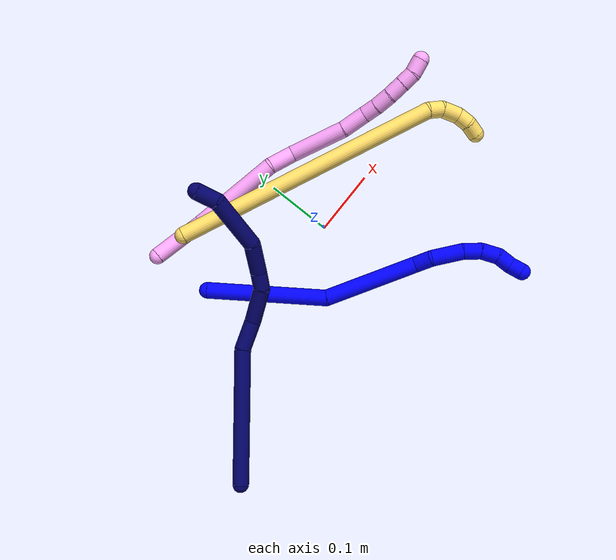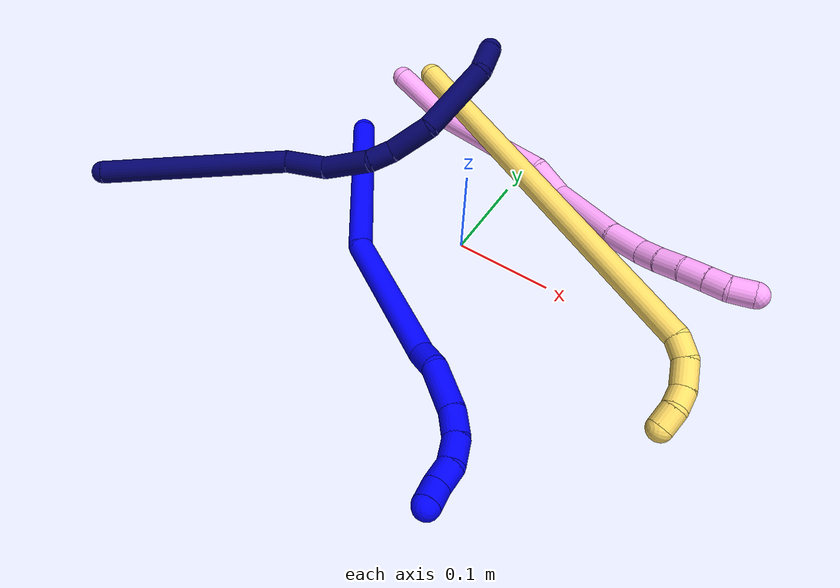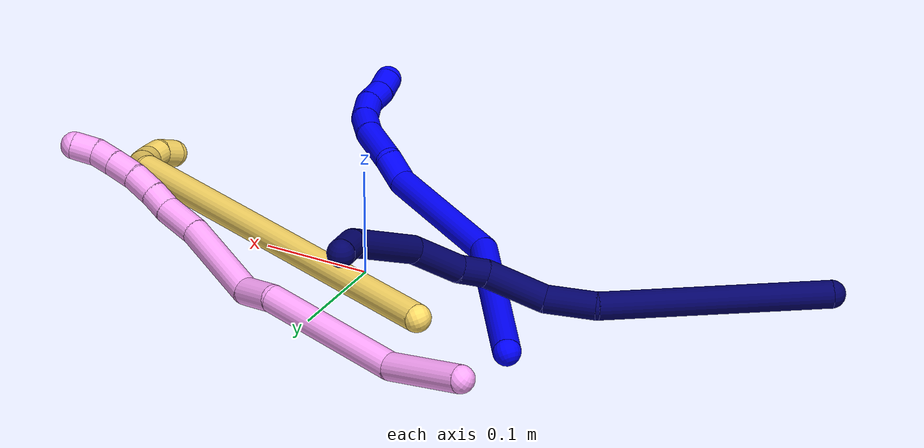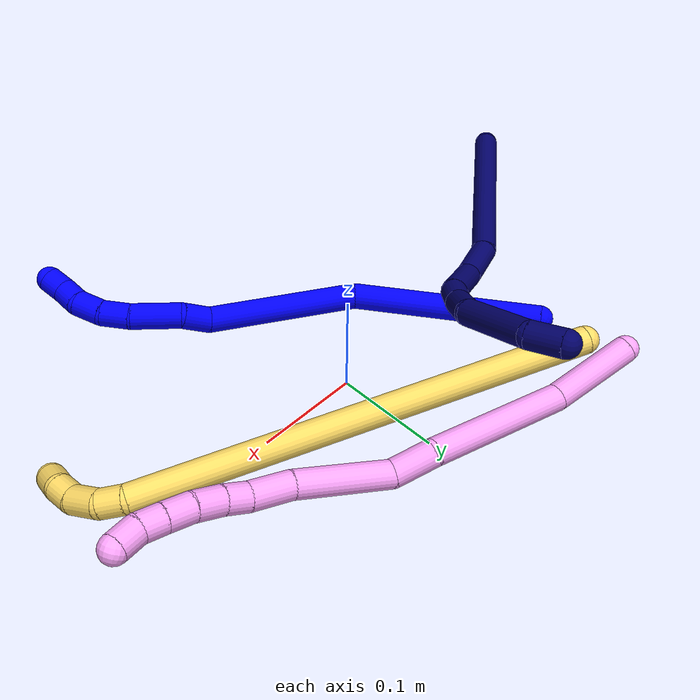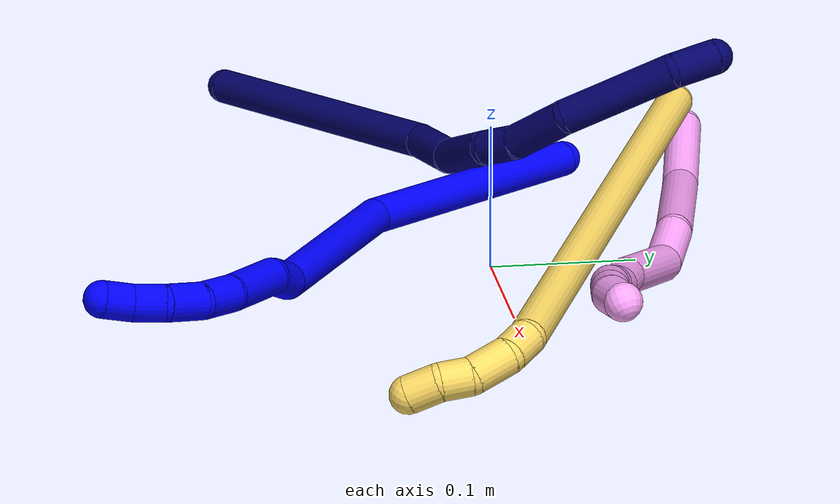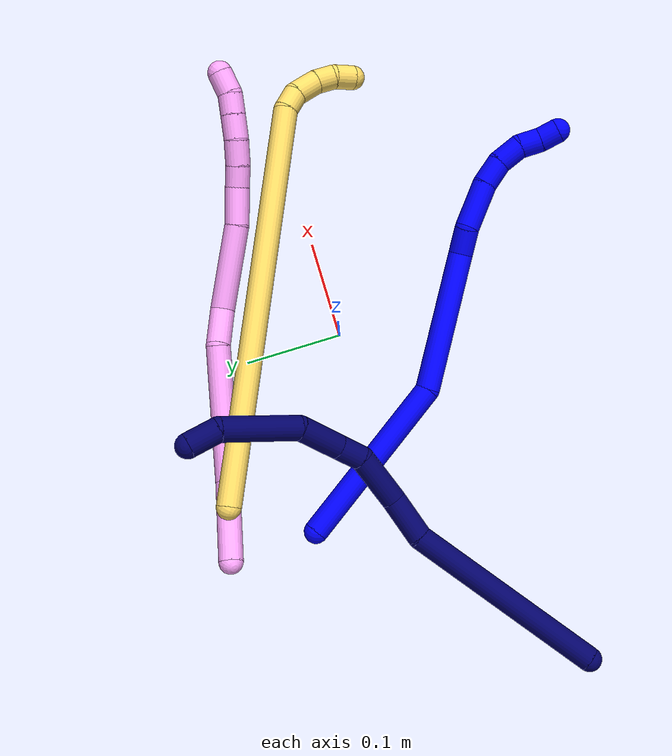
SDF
<sdf version="1.7">
 <world name="default">
  <model name="1">
   <static>0</static>
   <link name="1">
    <collision name="collision-cylinder-e_1_1_4">
     <pose>0.039187 -0.059771 0.056711 0.811661 0.443946 0.193348</pose>
     <geometry><cylinder><radius>0.0125</radius><length>0.182475</length></cylinder></geometry>
     <surface>
      <friction><ode><mu>1.16</mu><mu2>1.16</mu2><slip1>0</slip1><slip2>0</slip2></ode></friction>
      <contact><ode><kp>1e+06</kp><kd>1</kd><max_vel>0</max_vel><min_depth>0.001</min_depth></ode></contact>
     </surface>
    </collision>
    <visual name="visual-cylinder-e_1_1_4">
     <pose>0.039187 -0.059771 0.056711 0.811661 0.443946 0.193348</pose>
     <geometry><cylinder><radius>0.0125</radius><length>0.182475</length></cylinder></geometry>
     <material><ambient>0 0 1 1</ambient></material>
    </visual>
    <collision name="collision-cylinder-e_2_4_5">
     <pose>0.127012 -0.142189 0.162715 0.430673 0.730932 0.167006</pose>
     <geometry><cylinder><radius>0.0125</radius><length>0.145716</length></cylinder></geometry>
     <surface>
      <friction><ode><mu>1.16</mu><mu2>1.16</mu2><slip1>0</slip1><slip2>0</slip2></ode></friction>
      <contact><ode><kp>1e+06</kp><kd>1</kd><max_vel>0</max_vel><min_depth>0.001</min_depth></ode></contact>
     </surface>
    </collision>
    <visual name="visual-cylinder-e_2_4_5">
     <pose>0.127012 -0.142189 0.162715 0.430673 0.730932 0.167006</pose>
     <geometry><cylinder><radius>0.0125</radius><length>0.145716</length></cylinder></geometry>
     <material><ambient>0 0 1 1</ambient></material>
    </visual>
    <collision name="collision-cylinder-e_3_5_6">
     <pose>0.180718 -0.166792 0.22497 0.149816 0.368931 0.028004</pose>
     <geometry><cylinder><radius>0.0125</radius><length>0.028108</length></cylinder></geometry>
     <surface>
      <friction><ode><mu>1.16</mu><mu2>1.16</mu2><slip1>0</slip1><slip2>0</slip2></ode></friction>
      <contact><ode><kp>1e+06</kp><kd>1</kd><max_vel>0</max_vel><min_depth>0.001</min_depth></ode></contact>
     </surface>
    </collision>
    <visual name="visual-cylinder-e_3_5_6">
     <pose>0.180718 -0.166792 0.22497 0.149816 0.368931 0.028004</pose>
     <geometry><cylinder><radius>0.0125</radius><length>0.028108</length></cylinder></geometry>
     <material><ambient>0 0 1 1</ambient></material>
    </visual>
    <collision name="collision-cylinder-e_4_6_7">
     <pose>0.199293 -0.178709 0.255341 0.519669 0.592683 0.161987</pose>
     <geometry><cylinder><radius>0.0125</radius><length>0.048363</length></cylinder></geometry>
     <surface>
      <friction><ode><mu>1.16</mu><mu2>1.16</mu2><slip1>0</slip1><slip2>0</slip2></ode></friction>
      <contact><ode><kp>1e+06</kp><kd>1</kd><max_vel>0</max_vel><min_depth>0.001</min_depth></ode></contact>
     </surface>
    </collision>
    <visual name="visual-cylinder-e_4_6_7">
     <pose>0.199293 -0.178709 0.255341 0.519669 0.592683 0.161987</pose>
     <geometry><cylinder><radius>0.0125</radius><length>0.048363</length></cylinder></geometry>
     <material><ambient>0 0 1 1</ambient></material>
    </visual>
    <collision name="collision-cylinder-e_5_7_8">
     <pose>0.218676 -0.196447 0.282077 0.695082 0.450585 0.165661</pose>
     <geometry><cylinder><radius>0.0125</radius><length>0.026983</length></cylinder></geometry>
     <surface>
      <friction><ode><mu>1.16</mu><mu2>1.16</mu2><slip1>0</slip1><slip2>0</slip2></ode></friction>
      <contact><ode><kp>1e+06</kp><kd>1</kd><max_vel>0</max_vel><min_depth>0.001</min_depth></ode></contact>
     </surface>
    </collision>
    <visual name="visual-cylinder-e_5_7_8">
     <pose>0.218676 -0.196447 0.282077 0.695082 0.450585 0.165661</pose>
     <geometry><cylinder><radius>0.0125</radius><length>0.026983</length></cylinder></geometry>
     <material><ambient>0 0 1 1</ambient></material>
    </visual>
    <collision name="collision-cylinder-e_6_8_9">
     <pose>0.226963 -0.214165 0.299725 0.87385 0.183948 0.086099</pose>
     <geometry><cylinder><radius>0.0125</radius><length>0.026369</length></cylinder></geometry>
     <surface>
      <friction><ode><mu>1.16</mu><mu2>1.16</mu2><slip1>0</slip1><slip2>0</slip2></ode></friction>
      <contact><ode><kp>1e+06</kp><kd>1</kd><max_vel>0</max_vel><min_depth>0.001</min_depth></ode></contact>
     </surface>
    </collision>
    <visual name="visual-cylinder-e_6_8_9">
     <pose>0.226963 -0.214165 0.299725 0.87385 0.183948 0.086099</pose>
     <geometry><cylinder><radius>0.0125</radius><length>0.026369</length></cylinder></geometry>
     <material><ambient>0 0 1 1</ambient></material>
    </visual>
    <collision name="collision-cylinder-e_7_9_10">
     <pose>0.228543 -0.234068 0.312589 1.14286 -0.075789 -0.048745</pose>
     <geometry><cylinder><radius>0.0125</radius><length>0.021963</length></cylinder></geometry>
     <surface>
      <friction><ode><mu>1.16</mu><mu2>1.16</mu2><slip1>0</slip1><slip2>0</slip2></ode></friction>
      <contact><ode><kp>1e+06</kp><kd>1</kd><max_vel>0</max_vel><min_depth>0.001</min_depth></ode></contact>
     </surface>
    </collision>
    <visual name="visual-cylinder-e_7_9_10">
     <pose>0.228543 -0.234068 0.312589 1.14286 -0.075789 -0.048745</pose>
     <geometry><cylinder><radius>0.0125</radius><length>0.021963</length></cylinder></geometry>
     <material><ambient>0 0 1 1</ambient></material>
    </visual>
    <collision name="collision-cylinder-e_8_10_2">
     <pose>0.227213 -0.251985 0.323191 0.920026 -0.049838 -0.024697</pose>
     <geometry><cylinder><radius>0.0125</radius><length>0.020021</length></cylinder></geometry>
     <surface>
      <friction><ode><mu>1.16</mu><mu2>1.16</mu2><slip1>0</slip1><slip2>0</slip2></ode></friction>
      <contact><ode><kp>1e+06</kp><kd>1</kd><max_vel>0</max_vel><min_depth>0.001</min_depth></ode></contact>
     </surface>
    </collision>
    <visual name="visual-cylinder-e_8_10_2">
     <pose>0.227213 -0.251985 0.323191 0.920026 -0.049838 -0.024697</pose>
     <geometry><cylinder><radius>0.0125</radius><length>0.020021</length></cylinder></geometry>
     <material><ambient>0 0 1 1</ambient></material>
    </visual>
    <collision name="collision-sphere-2">
     <pose>0.226714 -0.25994 0.329248 0 -0 0</pose>
     <geometry><sphere><radius>0.0125</radius></sphere></geometry>
     <surface>
      <friction><ode><mu>1.16</mu><mu2>1.16</mu2><slip1>0</slip1><slip2>0</slip2></ode></friction>
      <contact><ode><kp>1e+06</kp><kd>1</kd><max_vel>0</max_vel><min_depth>0.001</min_depth></ode></contact>
     </surface>
    </collision>
    <visual name="visual-sphere-2">
     <pose>0.226714 -0.25994 0.329248 0 -0 0</pose>
     <geometry><sphere><radius>0.0125</radius></sphere></geometry>
     <material><ambient>0 0 1 1</ambient></material>
    </visual>
    <collision name="collision-sphere-10">
     <pose>0.227712 -0.24403 0.317134 0 -0 0</pose>
     <geometry><sphere><radius>0.0125</radius></sphere></geometry>
     <surface>
      <friction><ode><mu>1.16</mu><mu2>1.16</mu2><slip1>0</slip1><slip2>0</slip2></ode></friction>
      <contact><ode><kp>1e+06</kp><kd>1</kd><max_vel>0</max_vel><min_depth>0.001</min_depth></ode></contact>
     </surface>
    </collision>
    <visual name="visual-sphere-10">
     <pose>0.227712 -0.24403 0.317134 0 -0 0</pose>
     <geometry><sphere><radius>0.0125</radius></sphere></geometry>
     <material><ambient>0 0 1 1</ambient></material>
    </visual>
    <collision name="collision-sphere-9">
     <pose>0.229375 -0.224105 0.308045 0 -0 0</pose>
     <geometry><sphere><radius>0.0125</radius></sphere></geometry>
     <surface>
      <friction><ode><mu>1.16</mu><mu2>1.16</mu2><slip1>0</slip1><slip2>0</slip2></ode></friction>
      <contact><ode><kp>1e+06</kp><kd>1</kd><max_vel>0</max_vel><min_depth>0.001</min_depth></ode></contact>
     </surface>
    </collision>
    <visual name="visual-sphere-9">
     <pose>0.229375 -0.224105 0.308045 0 -0 0</pose>
     <geometry><sphere><radius>0.0125</radius></sphere></geometry>
     <material><ambient>0 0 1 1</ambient></material>
    </visual>
    <collision name="collision-sphere-4">
     <pose>0.078374 -0.119542 0.113422 0 -0 0</pose>
     <geometry><sphere><radius>0.0125</radius></sphere></geometry>
     <surface>
      <friction><ode><mu>1.16</mu><mu2>1.16</mu2><slip1>0</slip1><slip2>0</slip2></ode></friction>
      <contact><ode><kp>1e+06</kp><kd>1</kd><max_vel>0</max_vel><min_depth>0.001</min_depth></ode></contact>
     </surface>
    </collision>
    <visual name="visual-sphere-4">
     <pose>0.078374 -0.119542 0.113422 0 -0 0</pose>
     <geometry><sphere><radius>0.0125</radius></sphere></geometry>
     <material><ambient>0 0 1 1</ambient></material>
    </visual>
    <collision name="collision-sphere-1">
     <geometry><sphere><radius>0.0125</radius></sphere></geometry>
     <surface>
      <friction><ode><mu>1.16</mu><mu2>1.16</mu2><slip1>0</slip1><slip2>0</slip2></ode></friction>
      <contact><ode><kp>1e+06</kp><kd>1</kd><max_vel>0</max_vel><min_depth>0.001</min_depth></ode></contact>
     </surface>
    </collision>
    <visual name="visual-sphere-1">
     <geometry><sphere><radius>0.0125</radius></sphere></geometry>
     <material><ambient>0 0 1 1</ambient></material>
    </visual>
    <collision name="collision-sphere-8">
     <pose>0.224552 -0.204226 0.291405 0 -0 0</pose>
     <geometry><sphere><radius>0.0125</radius></sphere></geometry>
     <surface>
      <friction><ode><mu>1.16</mu><mu2>1.16</mu2><slip1>0</slip1><slip2>0</slip2></ode></friction>
      <contact><ode><kp>1e+06</kp><kd>1</kd><max_vel>0</max_vel><min_depth>0.001</min_depth></ode></contact>
     </surface>
    </collision>
    <visual name="visual-sphere-8">
     <pose>0.224552 -0.204226 0.291405 0 -0 0</pose>
     <geometry><sphere><radius>0.0125</radius></sphere></geometry>
     <material><ambient>0 0 1 1</ambient></material>
    </visual>
    <collision name="collision-sphere-5">
     <pose>0.175649 -0.164836 0.212008 0 -0 0</pose>
     <geometry><sphere><radius>0.0125</radius></sphere></geometry>
     <surface>
      <friction><ode><mu>1.16</mu><mu2>1.16</mu2><slip1>0</slip1><slip2>0</slip2></ode></friction>
      <contact><ode><kp>1e+06</kp><kd>1</kd><max_vel>0</max_vel><min_depth>0.001</min_depth></ode></contact>
     </surface>
    </collision>
    <visual name="visual-sphere-5">
     <pose>0.175649 -0.164836 0.212008 0 -0 0</pose>
     <geometry><sphere><radius>0.0125</radius></sphere></geometry>
     <material><ambient>0 0 1 1</ambient></material>
    </visual>
    <collision name="collision-sphere-6">
     <pose>0.185786 -0.168749 0.237931 0 -0 0</pose>
     <geometry><sphere><radius>0.0125</radius></sphere></geometry>
     <surface>
      <friction><ode><mu>1.16</mu><mu2>1.16</mu2><slip1>0</slip1><slip2>0</slip2></ode></friction>
      <contact><ode><kp>1e+06</kp><kd>1</kd><max_vel>0</max_vel><min_depth>0.001</min_depth></ode></contact>
     </surface>
    </collision>
    <visual name="visual-sphere-6">
     <pose>0.185786 -0.168749 0.237931 0 -0 0</pose>
     <geometry><sphere><radius>0.0125</radius></sphere></geometry>
     <material><ambient>0 0 1 1</ambient></material>
    </visual>
    <collision name="collision-sphere-7">
     <pose>0.212801 -0.188669 0.27275 0 -0 0</pose>
     <geometry><sphere><radius>0.0125</radius></sphere></geometry>
     <surface>
      <friction><ode><mu>1.16</mu><mu2>1.16</mu2><slip1>0</slip1><slip2>0</slip2></ode></friction>
      <contact><ode><kp>1e+06</kp><kd>1</kd><max_vel>0</max_vel><min_depth>0.001</min_depth></ode></contact>
     </surface>
    </collision>
    <visual name="visual-sphere-7">
     <pose>0.212801 -0.188669 0.27275 0 -0 0</pose>
     <geometry><sphere><radius>0.0125</radius></sphere></geometry>
     <material><ambient>0 0 1 1</ambient></material>
    </visual>
    <inertial>
     <pose>0.123661 -0.132182 0.163164 0 -0 0</pose>
     <mass>0.5</mass>
     <inertia><ixx>0.00081</ixx><ixy>0</ixy><ixz>0</ixz><iyy>0.000748</iyy><iyz>0</iyz><izz>5e-05</izz></inertia>
    </inertial>
   </link>
   <pose>-0.185628 0.080844 0.011471 0.40458 0.630309 0.046603</pose>
  </model>
  <model name="4">
   <static>0</static>
   <link name="4">
    <collision name="collision-cylinder-e_1_1_4">
     <pose>0.025661 -0.013452 -0.028637 2.70243 0.681448 2.01799</pose>
     <geometry><cylinder><radius>0.0125</radius><length>0.081475</length></cylinder></geometry>
     <surface>
      <friction><ode><mu>1.16</mu><mu2>1.16</mu2><slip1>0</slip1><slip2>0</slip2></ode></friction>
      <contact><ode><kp>1e+06</kp><kd>1</kd><max_vel>0</max_vel><min_depth>0.001</min_depth></ode></contact>
     </surface>
    </collision>
    <visual name="visual-cylinder-e_1_1_4">
     <pose>0.025661 -0.013452 -0.028637 2.70243 0.681448 2.01799</pose>
     <geometry><cylinder><radius>0.0125</radius><length>0.081475</length></cylinder></geometry>
     <material><ambient>1 0.65098 0.996078 1</ambient></material>
    </visual>
    <collision name="collision-cylinder-e_2_4_5">
     <pose>0.109843 -0.044661 -0.089784 2.64168 1.00647 2.27315</pose>
     <geometry><cylinder><radius>0.0125</radius><length>0.138519</length></cylinder></geometry>
     <surface>
      <friction><ode><mu>1.16</mu><mu2>1.16</mu2><slip1>0</slip1><slip2>0</slip2></ode></friction>
      <contact><ode><kp>1e+06</kp><kd>1</kd><max_vel>0</max_vel><min_depth>0.001</min_depth></ode></contact>
     </surface>
    </collision>
    <visual name="visual-cylinder-e_2_4_5">
     <pose>0.109843 -0.044661 -0.089784 2.64168 1.00647 2.27315</pose>
     <geometry><cylinder><radius>0.0125</radius><length>0.138519</length></cylinder></geometry>
     <material><ambient>1 0.65098 0.996078 1</ambient></material>
    </visual>
    <collision name="collision-cylinder-e_3_5_6">
     <pose>0.180262 -0.071548 -0.13488 2.51402 0.653156 1.61361</pose>
     <geometry><cylinder><radius>0.0125</radius><length>0.039158</length></cylinder></geometry>
     <surface>
      <friction><ode><mu>1.16</mu><mu2>1.16</mu2><slip1>0</slip1><slip2>0</slip2></ode></friction>
      <contact><ode><kp>1e+06</kp><kd>1</kd><max_vel>0</max_vel><min_depth>0.001</min_depth></ode></contact>
     </surface>
    </collision>
    <visual name="visual-cylinder-e_3_5_6">
     <pose>0.180262 -0.071548 -0.13488 2.51402 0.653156 1.61361</pose>
     <geometry><cylinder><radius>0.0125</radius><length>0.039158</length></cylinder></geometry>
     <material><ambient>1 0.65098 0.996078 1</ambient></material>
    </visual>
    <collision name="collision-cylinder-e_4_6_7">
     <pose>0.22999 -0.09983 -0.158529 2.09461 1.04173 1.56473</pose>
     <geometry><cylinder><radius>0.0125</radius><length>0.087642</length></cylinder></geometry>
     <surface>
      <friction><ode><mu>1.16</mu><mu2>1.16</mu2><slip1>0</slip1><slip2>0</slip2></ode></friction>
      <contact><ode><kp>1e+06</kp><kd>1</kd><max_vel>0</max_vel><min_depth>0.001</min_depth></ode></contact>
     </surface>
    </collision>
    <visual name="visual-cylinder-e_4_6_7">
     <pose>0.22999 -0.09983 -0.158529 2.09461 1.04173 1.56473</pose>
     <geometry><cylinder><radius>0.0125</radius><length>0.087642</length></cylinder></geometry>
     <material><ambient>1 0.65098 0.996078 1</ambient></material>
    </visual>
    <collision name="collision-cylinder-e_5_7_8">
     <pose>0.284573 -0.124873 -0.176367 2.42587 1.07881 2.02482</pose>
     <geometry><cylinder><radius>0.0125</radius><length>0.038015</length></cylinder></geometry>
     <surface>
      <friction><ode><mu>1.16</mu><mu2>1.16</mu2><slip1>0</slip1><slip2>0</slip2></ode></friction>
      <contact><ode><kp>1e+06</kp><kd>1</kd><max_vel>0</max_vel><min_depth>0.001</min_depth></ode></contact>
     </surface>
    </collision>
    <visual name="visual-cylinder-e_5_7_8">
     <pose>0.284573 -0.124873 -0.176367 2.42587 1.07881 2.02482</pose>
     <geometry><cylinder><radius>0.0125</radius><length>0.038015</length></cylinder></geometry>
     <material><ambient>1 0.65098 0.996078 1</ambient></material>
    </visual>
    <collision name="collision-cylinder-e_6_8_9">
     <pose>0.311572 -0.133864 -0.185274 2.1733 1.219 1.85045</pose>
     <geometry><cylinder><radius>0.0125</radius><length>0.021831</length></cylinder></geometry>
     <surface>
      <friction><ode><mu>1.16</mu><mu2>1.16</mu2><slip1>0</slip1><slip2>0</slip2></ode></friction>
      <contact><ode><kp>1e+06</kp><kd>1</kd><max_vel>0</max_vel><min_depth>0.001</min_depth></ode></contact>
     </surface>
    </collision>
    <visual name="visual-cylinder-e_6_8_9">
     <pose>0.311572 -0.133864 -0.185274 2.1733 1.219 1.85045</pose>
     <geometry><cylinder><radius>0.0125</radius><length>0.021831</length></cylinder></geometry>
     <material><ambient>1 0.65098 0.996078 1</ambient></material>
    </visual>
    <collision name="collision-cylinder-e_7_9_10">
     <pose>0.333885 -0.139541 -0.190651 2.47024 1.23992 2.23241</pose>
     <geometry><cylinder><radius>0.0125</radius><length>0.025516</length></cylinder></geometry>
     <surface>
      <friction><ode><mu>1.16</mu><mu2>1.16</mu2><slip1>0</slip1><slip2>0</slip2></ode></friction>
      <contact><ode><kp>1e+06</kp><kd>1</kd><max_vel>0</max_vel><min_depth>0.001</min_depth></ode></contact>
     </surface>
    </collision>
    <visual name="visual-cylinder-e_7_9_10">
     <pose>0.333885 -0.139541 -0.190651 2.47024 1.23992 2.23241</pose>
     <geometry><cylinder><radius>0.0125</radius><length>0.025516</length></cylinder></geometry>
     <material><ambient>1 0.65098 0.996078 1</ambient></material>
    </visual>
    <collision name="collision-cylinder-e_8_10_11">
     <pose>0.356997 -0.14418 -0.198655 2.73288 1.13187 2.51087</pose>
     <geometry><cylinder><radius>0.0125</radius><length>0.024405</length></cylinder></geometry>
     <surface>
      <friction><ode><mu>1.16</mu><mu2>1.16</mu2><slip1>0</slip1><slip2>0</slip2></ode></friction>
      <contact><ode><kp>1e+06</kp><kd>1</kd><max_vel>0</max_vel><min_depth>0.001</min_depth></ode></contact>
     </surface>
    </collision>
    <visual name="visual-cylinder-e_8_10_11">
     <pose>0.356997 -0.14418 -0.198655 2.73288 1.13187 2.51087</pose>
     <geometry><cylinder><radius>0.0125</radius><length>0.024405</length></cylinder></geometry>
     <material><ambient>1 0.65098 0.996078 1</ambient></material>
    </visual>
    <collision name="collision-cylinder-e_9_11_12">
     <pose>0.377365 -0.147985 -0.207715 2.75641 1.10885 2.5314</pose>
     <geometry><cylinder><radius>0.0125</radius><length>0.020827</length></cylinder></geometry>
     <surface>
      <friction><ode><mu>1.16</mu><mu2>1.16</mu2><slip1>0</slip1><slip2>0</slip2></ode></friction>
      <contact><ode><kp>1e+06</kp><kd>1</kd><max_vel>0</max_vel><min_depth>0.001</min_depth></ode></contact>
     </surface>
    </collision>
    <visual name="visual-cylinder-e_9_11_12">
     <pose>0.377365 -0.147985 -0.207715 2.75641 1.10885 2.5314</pose>
     <geometry><cylinder><radius>0.0125</radius><length>0.020827</length></cylinder></geometry>
     <material><ambient>1 0.65098 0.996078 1</ambient></material>
    </visual>
    <collision name="collision-cylinder-e_10_12_2">
     <pose>0.396078 -0.148412 -0.218173 -2.93089 0.980207 -2.75027</pose>
     <geometry><cylinder><radius>0.0125</radius><length>0.022613</length></cylinder></geometry>
     <surface>
      <friction><ode><mu>1.16</mu><mu2>1.16</mu2><slip1>0</slip1><slip2>0</slip2></ode></friction>
      <contact><ode><kp>1e+06</kp><kd>1</kd><max_vel>0</max_vel><min_depth>0.001</min_depth></ode></contact>
     </surface>
    </collision>
    <visual name="visual-cylinder-e_10_12_2">
     <pose>0.396078 -0.148412 -0.218173 -2.93089 0.980207 -2.75027</pose>
     <geometry><cylinder><radius>0.0125</radius><length>0.022613</length></cylinder></geometry>
     <material><ambient>1 0.65098 0.996078 1</ambient></material>
    </visual>
    <collision name="collision-sphere-2">
     <pose>0.40547 -0.147095 -0.22433 0 -0 0</pose>
     <geometry><sphere><radius>0.0125</radius></sphere></geometry>
     <surface>
      <friction><ode><mu>1.16</mu><mu2>1.16</mu2><slip1>0</slip1><slip2>0</slip2></ode></friction>
      <contact><ode><kp>1e+06</kp><kd>1</kd><max_vel>0</max_vel><min_depth>0.001</min_depth></ode></contact>
     </surface>
    </collision>
    <visual name="visual-sphere-2">
     <pose>0.40547 -0.147095 -0.22433 0 -0 0</pose>
     <geometry><sphere><radius>0.0125</radius></sphere></geometry>
     <material><ambient>1 0.65098 0.996078 1</ambient></material>
    </visual>
    <collision name="collision-sphere-12">
     <pose>0.386687 -0.149728 -0.212016 0 -0 0</pose>
     <geometry><sphere><radius>0.0125</radius></sphere></geometry>
     <surface>
      <friction><ode><mu>1.16</mu><mu2>1.16</mu2><slip1>0</slip1><slip2>0</slip2></ode></friction>
      <contact><ode><kp>1e+06</kp><kd>1</kd><max_vel>0</max_vel><min_depth>0.001</min_depth></ode></contact>
     </surface>
    </collision>
    <visual name="visual-sphere-12">
     <pose>0.386687 -0.149728 -0.212016 0 -0 0</pose>
     <geometry><sphere><radius>0.0125</radius></sphere></geometry>
     <material><ambient>1 0.65098 0.996078 1</ambient></material>
    </visual>
    <collision name="collision-sphere-11">
     <pose>0.368043 -0.146241 -0.203414 0 -0 0</pose>
     <geometry><sphere><radius>0.0125</radius></sphere></geometry>
     <surface>
      <friction><ode><mu>1.16</mu><mu2>1.16</mu2><slip1>0</slip1><slip2>0</slip2></ode></friction>
      <contact><ode><kp>1e+06</kp><kd>1</kd><max_vel>0</max_vel><min_depth>0.001</min_depth></ode></contact>
     </surface>
    </collision>
    <visual name="visual-sphere-11">
     <pose>0.368043 -0.146241 -0.203414 0 -0 0</pose>
     <geometry><sphere><radius>0.0125</radius></sphere></geometry>
     <material><ambient>1 0.65098 0.996078 1</ambient></material>
    </visual>
    <collision name="collision-sphere-10">
     <pose>0.345951 -0.142119 -0.193897 0 -0 0</pose>
     <geometry><sphere><radius>0.0125</radius></sphere></geometry>
     <surface>
      <friction><ode><mu>1.16</mu><mu2>1.16</mu2><slip1>0</slip1><slip2>0</slip2></ode></friction>
      <contact><ode><kp>1e+06</kp><kd>1</kd><max_vel>0</max_vel><min_depth>0.001</min_depth></ode></contact>
     </surface>
    </collision>
    <visual name="visual-sphere-10">
     <pose>0.345951 -0.142119 -0.193897 0 -0 0</pose>
     <geometry><sphere><radius>0.0125</radius></sphere></geometry>
     <material><ambient>1 0.65098 0.996078 1</ambient></material>
    </visual>
    <collision name="collision-sphere-9">
     <pose>0.321819 -0.136963 -0.187406 0 -0 0</pose>
     <geometry><sphere><radius>0.0125</radius></sphere></geometry>
     <surface>
      <friction><ode><mu>1.16</mu><mu2>1.16</mu2><slip1>0</slip1><slip2>0</slip2></ode></friction>
      <contact><ode><kp>1e+06</kp><kd>1</kd><max_vel>0</max_vel><min_depth>0.001</min_depth></ode></contact>
     </surface>
    </collision>
    <visual name="visual-sphere-9">
     <pose>0.321819 -0.136963 -0.187406 0 -0 0</pose>
     <geometry><sphere><radius>0.0125</radius></sphere></geometry>
     <material><ambient>1 0.65098 0.996078 1</ambient></material>
    </visual>
    <collision name="collision-sphere-4">
     <pose>0.051322 -0.026904 -0.057274 0 -0 0</pose>
     <geometry><sphere><radius>0.0125</radius></sphere></geometry>
     <surface>
      <friction><ode><mu>1.16</mu><mu2>1.16</mu2><slip1>0</slip1><slip2>0</slip2></ode></friction>
      <contact><ode><kp>1e+06</kp><kd>1</kd><max_vel>0</max_vel><min_depth>0.001</min_depth></ode></contact>
     </surface>
    </collision>
    <visual name="visual-sphere-4">
     <pose>0.051322 -0.026904 -0.057274 0 -0 0</pose>
     <geometry><sphere><radius>0.0125</radius></sphere></geometry>
     <material><ambient>1 0.65098 0.996078 1</ambient></material>
    </visual>
    <collision name="collision-sphere-1">
     <geometry><sphere><radius>0.0125</radius></sphere></geometry>
     <surface>
      <friction><ode><mu>1.16</mu><mu2>1.16</mu2><slip1>0</slip1><slip2>0</slip2></ode></friction>
      <contact><ode><kp>1e+06</kp><kd>1</kd><max_vel>0</max_vel><min_depth>0.001</min_depth></ode></contact>
     </surface>
    </collision>
    <visual name="visual-sphere-1">
     <geometry><sphere><radius>0.0125</radius></sphere></geometry>
     <material><ambient>1 0.65098 0.996078 1</ambient></material>
    </visual>
    <collision name="collision-sphere-8">
     <pose>0.301326 -0.130764 -0.183143 0 -0 0</pose>
     <geometry><sphere><radius>0.0125</radius></sphere></geometry>
     <surface>
      <friction><ode><mu>1.16</mu><mu2>1.16</mu2><slip1>0</slip1><slip2>0</slip2></ode></friction>
      <contact><ode><kp>1e+06</kp><kd>1</kd><max_vel>0</max_vel><min_depth>0.001</min_depth></ode></contact>
     </surface>
    </collision>
    <visual name="visual-sphere-8">
     <pose>0.301326 -0.130764 -0.183143 0 -0 0</pose>
     <geometry><sphere><radius>0.0125</radius></sphere></geometry>
     <material><ambient>1 0.65098 0.996078 1</ambient></material>
    </visual>
    <collision name="collision-sphere-5">
     <pose>0.168364 -0.062418 -0.122294 0 -0 0</pose>
     <geometry><sphere><radius>0.0125</radius></sphere></geometry>
     <surface>
      <friction><ode><mu>1.16</mu><mu2>1.16</mu2><slip1>0</slip1><slip2>0</slip2></ode></friction>
      <contact><ode><kp>1e+06</kp><kd>1</kd><max_vel>0</max_vel><min_depth>0.001</min_depth></ode></contact>
     </surface>
    </collision>
    <visual name="visual-sphere-5">
     <pose>0.168364 -0.062418 -0.122294 0 -0 0</pose>
     <geometry><sphere><radius>0.0125</radius></sphere></geometry>
     <material><ambient>1 0.65098 0.996078 1</ambient></material>
    </visual>
    <collision name="collision-sphere-6">
     <pose>0.19216 -0.080678 -0.147466 0 -0 0</pose>
     <geometry><sphere><radius>0.0125</radius></sphere></geometry>
     <surface>
      <friction><ode><mu>1.16</mu><mu2>1.16</mu2><slip1>0</slip1><slip2>0</slip2></ode></friction>
      <contact><ode><kp>1e+06</kp><kd>1</kd><max_vel>0</max_vel><min_depth>0.001</min_depth></ode></contact>
     </surface>
    </collision>
    <visual name="visual-sphere-6">
     <pose>0.19216 -0.080678 -0.147466 0 -0 0</pose>
     <geometry><sphere><radius>0.0125</radius></sphere></geometry>
     <material><ambient>1 0.65098 0.996078 1</ambient></material>
    </visual>
    <collision name="collision-sphere-7">
     <pose>0.26782 -0.118982 -0.169592 0 -0 0</pose>
     <geometry><sphere><radius>0.0125</radius></sphere></geometry>
     <surface>
      <friction><ode><mu>1.16</mu><mu2>1.16</mu2><slip1>0</slip1><slip2>0</slip2></ode></friction>
      <contact><ode><kp>1e+06</kp><kd>1</kd><max_vel>0</max_vel><min_depth>0.001</min_depth></ode></contact>
     </surface>
    </collision>
    <visual name="visual-sphere-7">
     <pose>0.26782 -0.118982 -0.169592 0 -0 0</pose>
     <geometry><sphere><radius>0.0125</radius></sphere></geometry>
     <material><ambient>1 0.65098 0.996078 1</ambient></material>
    </visual>
    <inertial>
     <pose>0.192378 -0.08004 -0.127334 0 -0 0</pose>
     <mass>0.5</mass>
     <inertia>
      <ixx>9.9e-05</ixx>
      <ixy>0</ixy>
      <ixz>0</ixz>
      <iyy>0.000445</iyy>
      <iyz>0</iyz>
      <izz>-0.000203</izz>
     </inertia>
    </inertial>
   </link>
   <pose>-0.189428 0.169523 0.030487 0.337833 -0.663459 -0.137204</pose>
  </model>
  <model name="5">
   <static>0</static>
   <link name="5">
    <collision name="collision-cylinder-e_1_1_4">
     <pose>0.167425 -0.079291 -0.085968 2.39658 0.961057 1.85511</pose>
     <geometry><cylinder><radius>0.0125</radius><length>0.408455</length></cylinder></geometry>
     <surface>
      <friction><ode><mu>1.16</mu><mu2>1.16</mu2><slip1>0</slip1><slip2>0</slip2></ode></friction>
      <contact><ode><kp>1e+06</kp><kd>1</kd><max_vel>0</max_vel><min_depth>0.001</min_depth></ode></contact>
     </surface>
    </collision>
    <visual name="visual-cylinder-e_1_1_4">
     <pose>0.167425 -0.079291 -0.085968 2.39658 0.961057 1.85511</pose>
     <geometry><cylinder><radius>0.0125</radius><length>0.408455</length></cylinder></geometry>
     <material><ambient>1 0.858824 0.4 1</ambient></material>
    </visual>
    <collision name="collision-cylinder-e_2_4_5">
     <pose>0.342952 -0.165835 -0.173744 1.81499 0.825634 1.02175</pose>
     <geometry><cylinder><radius>0.0125</radius><length>0.022047</length></cylinder></geometry>
     <surface>
      <friction><ode><mu>1.16</mu><mu2>1.16</mu2><slip1>0</slip1><slip2>0</slip2></ode></friction>
      <contact><ode><kp>1e+06</kp><kd>1</kd><max_vel>0</max_vel><min_depth>0.001</min_depth></ode></contact>
     </surface>
    </collision>
    <visual name="visual-cylinder-e_2_4_5">
     <pose>0.342952 -0.165835 -0.173744 1.81499 0.825634 1.02175</pose>
     <geometry><cylinder><radius>0.0125</radius><length>0.022047</length></cylinder></geometry>
     <material><ambient>1 0.858824 0.4 1</ambient></material>
    </visual>
    <collision name="collision-cylinder-e_3_5_6">
     <pose>0.359129 -0.184144 -0.17267 1.31585 0.615274 0.481541</pose>
     <geometry><cylinder><radius>0.0125</radius><length>0.027981</length></cylinder></geometry>
     <surface>
      <friction><ode><mu>1.16</mu><mu2>1.16</mu2><slip1>0</slip1><slip2>0</slip2></ode></friction>
      <contact><ode><kp>1e+06</kp><kd>1</kd><max_vel>0</max_vel><min_depth>0.001</min_depth></ode></contact>
     </surface>
    </collision>
    <visual name="visual-cylinder-e_3_5_6">
     <pose>0.359129 -0.184144 -0.17267 1.31585 0.615274 0.481541</pose>
     <geometry><cylinder><radius>0.0125</radius><length>0.027981</length></cylinder></geometry>
     <material><ambient>1 0.858824 0.4 1</ambient></material>
    </visual>
    <collision name="collision-cylinder-e_4_6_7">
     <pose>0.372442 -0.201787 -0.164213 0.868338 0.545487 0.257954</pose>
     <geometry><cylinder><radius>0.0125</radius><length>0.020191</length></cylinder></geometry>
     <surface>
      <friction><ode><mu>1.16</mu><mu2>1.16</mu2><slip1>0</slip1><slip2>0</slip2></ode></friction>
      <contact><ode><kp>1e+06</kp><kd>1</kd><max_vel>0</max_vel><min_depth>0.001</min_depth></ode></contact>
     </surface>
    </collision>
    <visual name="visual-cylinder-e_4_6_7">
     <pose>0.372442 -0.201787 -0.164213 0.868338 0.545487 0.257954</pose>
     <geometry><cylinder><radius>0.0125</radius><length>0.020191</length></cylinder></geometry>
     <material><ambient>1 0.858824 0.4 1</ambient></material>
    </visual>
    <collision name="collision-cylinder-e_5_7_2">
     <pose>0.379787 -0.216988 -0.152714 0.968472 0.198917 0.104882</pose>
     <geometry><cylinder><radius>0.0125</radius><length>0.021327</length></cylinder></geometry>
     <surface>
      <friction><ode><mu>1.16</mu><mu2>1.16</mu2><slip1>0</slip1><slip2>0</slip2></ode></friction>
      <contact><ode><kp>1e+06</kp><kd>1</kd><max_vel>0</max_vel><min_depth>0.001</min_depth></ode></contact>
     </surface>
    </collision>
    <visual name="visual-cylinder-e_5_7_2">
     <pose>0.379787 -0.216988 -0.152714 0.968472 0.198917 0.104882</pose>
     <geometry><cylinder><radius>0.0125</radius><length>0.021327</length></cylinder></geometry>
     <material><ambient>1 0.858824 0.4 1</ambient></material>
    </visual>
    <collision name="collision-sphere-2">
     <pose>0.381894 -0.225601 -0.146792 0 -0 0</pose>
     <geometry><sphere><radius>0.0125</radius></sphere></geometry>
     <surface>
      <friction><ode><mu>1.16</mu><mu2>1.16</mu2><slip1>0</slip1><slip2>0</slip2></ode></friction>
      <contact><ode><kp>1e+06</kp><kd>1</kd><max_vel>0</max_vel><min_depth>0.001</min_depth></ode></contact>
     </surface>
    </collision>
    <visual name="visual-sphere-2">
     <pose>0.381894 -0.225601 -0.146792 0 -0 0</pose>
     <geometry><sphere><radius>0.0125</radius></sphere></geometry>
     <material><ambient>1 0.858824 0.4 1</ambient></material>
    </visual>
    <collision name="collision-sphere-7">
     <pose>0.37768 -0.208374 -0.158637 0 -0 0</pose>
     <geometry><sphere><radius>0.0125</radius></sphere></geometry>
     <surface>
      <friction><ode><mu>1.16</mu><mu2>1.16</mu2><slip1>0</slip1><slip2>0</slip2></ode></friction>
      <contact><ode><kp>1e+06</kp><kd>1</kd><max_vel>0</max_vel><min_depth>0.001</min_depth></ode></contact>
     </surface>
    </collision>
    <visual name="visual-sphere-7">
     <pose>0.37768 -0.208374 -0.158637 0 -0 0</pose>
     <geometry><sphere><radius>0.0125</radius></sphere></geometry>
     <material><ambient>1 0.858824 0.4 1</ambient></material>
    </visual>
    <collision name="collision-sphere-6">
     <pose>0.367204 -0.1952 -0.169789 0 -0 0</pose>
     <geometry><sphere><radius>0.0125</radius></sphere></geometry>
     <surface>
      <friction><ode><mu>1.16</mu><mu2>1.16</mu2><slip1>0</slip1><slip2>0</slip2></ode></friction>
      <contact><ode><kp>1e+06</kp><kd>1</kd><max_vel>0</max_vel><min_depth>0.001</min_depth></ode></contact>
     </surface>
    </collision>
    <visual name="visual-sphere-6">
     <pose>0.367204 -0.1952 -0.169789 0 -0 0</pose>
     <geometry><sphere><radius>0.0125</radius></sphere></geometry>
     <material><ambient>1 0.858824 0.4 1</ambient></material>
    </visual>
    <collision name="collision-sphere-5">
     <pose>0.351054 -0.173089 -0.175551 0 -0 0</pose>
     <geometry><sphere><radius>0.0125</radius></sphere></geometry>
     <surface>
      <friction><ode><mu>1.16</mu><mu2>1.16</mu2><slip1>0</slip1><slip2>0</slip2></ode></friction>
      <contact><ode><kp>1e+06</kp><kd>1</kd><max_vel>0</max_vel><min_depth>0.001</min_depth></ode></contact>
     </surface>
    </collision>
    <visual name="visual-sphere-5">
     <pose>0.351054 -0.173089 -0.175551 0 -0 0</pose>
     <geometry><sphere><radius>0.0125</radius></sphere></geometry>
     <material><ambient>1 0.858824 0.4 1</ambient></material>
    </visual>
    <collision name="collision-sphere-1">
     <geometry><sphere><radius>0.0125</radius></sphere></geometry>
     <surface>
      <friction><ode><mu>1.16</mu><mu2>1.16</mu2><slip1>0</slip1><slip2>0</slip2></ode></friction>
      <contact><ode><kp>1e+06</kp><kd>1</kd><max_vel>0</max_vel><min_depth>0.001</min_depth></ode></contact>
     </surface>
    </collision>
    <visual name="visual-sphere-1">
     <geometry><sphere><radius>0.0125</radius></sphere></geometry>
     <material><ambient>1 0.858824 0.4 1</ambient></material>
    </visual>
    <collision name="collision-sphere-4">
     <pose>0.33485 -0.158582 -0.171937 0 -0 0</pose>
     <geometry><sphere><radius>0.0125</radius></sphere></geometry>
     <surface>
      <friction><ode><mu>1.16</mu><mu2>1.16</mu2><slip1>0</slip1><slip2>0</slip2></ode></friction>
      <contact><ode><kp>1e+06</kp><kd>1</kd><max_vel>0</max_vel><min_depth>0.001</min_depth></ode></contact>
     </surface>
    </collision>
    <visual name="visual-sphere-4">
     <pose>0.33485 -0.158582 -0.171937 0 -0 0</pose>
     <geometry><sphere><radius>0.0125</radius></sphere></geometry>
     <material><ambient>1 0.858824 0.4 1</ambient></material>
    </visual>
    <inertial>
     <pose>0.20323 -0.099795 -0.100697 0 -0 0</pose>
     <mass>0.5</mass>
     <inertia>
      <ixx>0.002253</ixx>
      <ixy>0</ixy>
      <ixz>0</ixz>
      <iyy>0.007332</iyy>
      <iyz>0</iyz>
      <izz>-0.002467</izz>
     </inertia>
    </inertial>
   </link>
   <pose>-0.138085 0.152632 0.066808 1.21328 -0.485127 -0.680553</pose>
  </model>
  <model name="7">
   <static>0</static>
   <link name="7">
    <collision name="collision-cylinder-e_1_1_4">
     <pose>0.051264 0.090175 -0.004122 -1.61647 0.516482 -0.539499</pose>
     <geometry><cylinder><radius>0.0125</radius><length>0.207619</length></cylinder></geometry>
     <surface>
      <friction><ode><mu>1.16</mu><mu2>1.16</mu2><slip1>0</slip1><slip2>0</slip2></ode></friction>
      <contact><ode><kp>1e+06</kp><kd>1</kd><max_vel>0</max_vel><min_depth>0.001</min_depth></ode></contact>
     </surface>
    </collision>
    <visual name="visual-cylinder-e_1_1_4">
     <pose>0.051264 0.090175 -0.004122 -1.61647 0.516482 -0.539499</pose>
     <geometry><cylinder><radius>0.0125</radius><length>0.207619</length></cylinder></geometry>
     <material><ambient>0.003922 0 0.403922 1</ambient></material>
    </visual>
    <collision name="collision-cylinder-e_2_4_5">
     <pose>0.106651 0.203053 -0.00864 -1.58824 0.179664 -0.182809</pose>
     <geometry><cylinder><radius>0.0125</radius><length>0.046157</length></cylinder></geometry>
     <surface>
      <friction><ode><mu>1.16</mu><mu2>1.16</mu2><slip1>0</slip1><slip2>0</slip2></ode></friction>
      <contact><ode><kp>1e+06</kp><kd>1</kd><max_vel>0</max_vel><min_depth>0.001</min_depth></ode></contact>
     </surface>
    </collision>
    <visual name="visual-cylinder-e_2_4_5">
     <pose>0.106651 0.203053 -0.00864 -1.58824 0.179664 -0.182809</pose>
     <geometry><cylinder><radius>0.0125</radius><length>0.046157</length></cylinder></geometry>
     <material><ambient>0.003922 0 0.403922 1</ambient></material>
    </visual>
    <collision name="collision-cylinder-e_3_5_6">
     <pose>0.115544 0.251483 -0.019016 -1.94084 0.17113 -0.249252</pose>
     <geometry><cylinder><radius>0.0125</radius><length>0.056007</length></cylinder></geometry>
     <surface>
      <friction><ode><mu>1.16</mu><mu2>1.16</mu2><slip1>0</slip1><slip2>0</slip2></ode></friction>
      <contact><ode><kp>1e+06</kp><kd>1</kd><max_vel>0</max_vel><min_depth>0.001</min_depth></ode></contact>
     </surface>
    </collision>
    <visual name="visual-cylinder-e_3_5_6">
     <pose>0.115544 0.251483 -0.019016 -1.94084 0.17113 -0.249252</pose>
     <geometry><cylinder><radius>0.0125</radius><length>0.056007</length></cylinder></geometry>
     <material><ambient>0.003922 0 0.403922 1</ambient></material>
    </visual>
    <collision name="collision-cylinder-e_4_6_7">
     <pose>0.127863 0.287137 -0.033911 -2.03056 0.598201 -0.922109</pose>
     <geometry><cylinder><radius>0.0125</radius><length>0.026812</length></cylinder></geometry>
     <surface>
      <friction><ode><mu>1.16</mu><mu2>1.16</mu2><slip1>0</slip1><slip2>0</slip2></ode></friction>
      <contact><ode><kp>1e+06</kp><kd>1</kd><max_vel>0</max_vel><min_depth>0.001</min_depth></ode></contact>
     </surface>
    </collision>
    <visual name="visual-cylinder-e_4_6_7">
     <pose>0.127863 0.287137 -0.033911 -2.03056 0.598201 -0.922109</pose>
     <geometry><cylinder><radius>0.0125</radius><length>0.026812</length></cylinder></geometry>
     <material><ambient>0.003922 0 0.403922 1</ambient></material>
    </visual>
    <collision name="collision-cylinder-e_5_7_8">
     <pose>0.14696 0.313476 -0.052628 -2.27 0.494007 -0.992583</pose>
     <geometry><cylinder><radius>0.0125</radius><length>0.04871</length></cylinder></geometry>
     <surface>
      <friction><ode><mu>1.16</mu><mu2>1.16</mu2><slip1>0</slip1><slip2>0</slip2></ode></friction>
      <contact><ode><kp>1e+06</kp><kd>1</kd><max_vel>0</max_vel><min_depth>0.001</min_depth></ode></contact>
     </surface>
    </collision>
    <visual name="visual-cylinder-e_5_7_8">
     <pose>0.14696 0.313476 -0.052628 -2.27 0.494007 -0.992583</pose>
     <geometry><cylinder><radius>0.0125</radius><length>0.04871</length></cylinder></geometry>
     <material><ambient>0.003922 0 0.403922 1</ambient></material>
    </visual>
    <collision name="collision-cylinder-e_6_8_9">
     <pose>0.190344 0.344696 -0.087756 -2.5347 0.886644 -1.97567</pose>
     <geometry><cylinder><radius>0.0125</radius><length>0.082161</length></cylinder></geometry>
     <surface>
      <friction><ode><mu>1.16</mu><mu2>1.16</mu2><slip1>0</slip1><slip2>0</slip2></ode></friction>
      <contact><ode><kp>1e+06</kp><kd>1</kd><max_vel>0</max_vel><min_depth>0.001</min_depth></ode></contact>
     </surface>
    </collision>
    <visual name="visual-cylinder-e_6_8_9">
     <pose>0.190344 0.344696 -0.087756 -2.5347 0.886644 -1.97567</pose>
     <geometry><cylinder><radius>0.0125</radius><length>0.082161</length></cylinder></geometry>
     <material><ambient>0.003922 0 0.403922 1</ambient></material>
    </visual>
    <collision name="collision-cylinder-e_7_9_2">
     <pose>0.237459 0.358411 -0.114558 2.94475 1.22049 2.86104</pose>
     <geometry><cylinder><radius>0.0125</radius><length>0.032534</length></cylinder></geometry>
     <surface>
      <friction><ode><mu>1.16</mu><mu2>1.16</mu2><slip1>0</slip1><slip2>0</slip2></ode></friction>
      <contact><ode><kp>1e+06</kp><kd>1</kd><max_vel>0</max_vel><min_depth>0.001</min_depth></ode></contact>
     </surface>
    </collision>
    <visual name="visual-cylinder-e_7_9_2">
     <pose>0.237459 0.358411 -0.114558 2.94475 1.22049 2.86104</pose>
     <geometry><cylinder><radius>0.0125</radius><length>0.032534</length></cylinder></geometry>
     <material><ambient>0.003922 0 0.403922 1</ambient></material>
    </visual>
    <collision name="collision-sphere-2">
     <pose>0.252738 0.35732 -0.120032 0 -0 0</pose>
     <geometry><sphere><radius>0.0125</radius></sphere></geometry>
     <surface>
      <friction><ode><mu>1.16</mu><mu2>1.16</mu2><slip1>0</slip1><slip2>0</slip2></ode></friction>
      <contact><ode><kp>1e+06</kp><kd>1</kd><max_vel>0</max_vel><min_depth>0.001</min_depth></ode></contact>
     </surface>
    </collision>
    <visual name="visual-sphere-2">
     <pose>0.252738 0.35732 -0.120032 0 -0 0</pose>
     <geometry><sphere><radius>0.0125</radius></sphere></geometry>
     <material><ambient>0.003922 0 0.403922 1</ambient></material>
    </visual>
    <collision name="collision-sphere-9">
     <pose>0.22218 0.359503 -0.109083 0 -0 0</pose>
     <geometry><sphere><radius>0.0125</radius></sphere></geometry>
     <surface>
      <friction><ode><mu>1.16</mu><mu2>1.16</mu2><slip1>0</slip1><slip2>0</slip2></ode></friction>
      <contact><ode><kp>1e+06</kp><kd>1</kd><max_vel>0</max_vel><min_depth>0.001</min_depth></ode></contact>
     </surface>
    </collision>
    <visual name="visual-sphere-9">
     <pose>0.22218 0.359503 -0.109083 0 -0 0</pose>
     <geometry><sphere><radius>0.0125</radius></sphere></geometry>
     <material><ambient>0.003922 0 0.403922 1</ambient></material>
    </visual>
    <collision name="collision-sphere-4">
     <pose>0.102527 0.180349 -0.008244 0 -0 0</pose>
     <geometry><sphere><radius>0.0125</radius></sphere></geometry>
     <surface>
      <friction><ode><mu>1.16</mu><mu2>1.16</mu2><slip1>0</slip1><slip2>0</slip2></ode></friction>
      <contact><ode><kp>1e+06</kp><kd>1</kd><max_vel>0</max_vel><min_depth>0.001</min_depth></ode></contact>
     </surface>
    </collision>
    <visual name="visual-sphere-4">
     <pose>0.102527 0.180349 -0.008244 0 -0 0</pose>
     <geometry><sphere><radius>0.0125</radius></sphere></geometry>
     <material><ambient>0.003922 0 0.403922 1</ambient></material>
    </visual>
    <collision name="collision-sphere-1">
     <geometry><sphere><radius>0.0125</radius></sphere></geometry>
     <surface>
      <friction><ode><mu>1.16</mu><mu2>1.16</mu2><slip1>0</slip1><slip2>0</slip2></ode></friction>
      <contact><ode><kp>1e+06</kp><kd>1</kd><max_vel>0</max_vel><min_depth>0.001</min_depth></ode></contact>
     </surface>
    </collision>
    <visual name="visual-sphere-1">
     <geometry><sphere><radius>0.0125</radius></sphere></geometry>
     <material><ambient>0.003922 0 0.403922 1</ambient></material>
    </visual>
    <collision name="collision-sphere-8">
     <pose>0.158509 0.329888 -0.066429 0 -0 0</pose>
     <geometry><sphere><radius>0.0125</radius></sphere></geometry>
     <surface>
      <friction><ode><mu>1.16</mu><mu2>1.16</mu2><slip1>0</slip1><slip2>0</slip2></ode></friction>
      <contact><ode><kp>1e+06</kp><kd>1</kd><max_vel>0</max_vel><min_depth>0.001</min_depth></ode></contact>
     </surface>
    </collision>
    <visual name="visual-sphere-8">
     <pose>0.158509 0.329888 -0.066429 0 -0 0</pose>
     <geometry><sphere><radius>0.0125</radius></sphere></geometry>
     <material><ambient>0.003922 0 0.403922 1</ambient></material>
    </visual>
    <collision name="collision-sphere-5">
     <pose>0.110775 0.225756 -0.009036 0 -0 0</pose>
     <geometry><sphere><radius>0.0125</radius></sphere></geometry>
     <surface>
      <friction><ode><mu>1.16</mu><mu2>1.16</mu2><slip1>0</slip1><slip2>0</slip2></ode></friction>
      <contact><ode><kp>1e+06</kp><kd>1</kd><max_vel>0</max_vel><min_depth>0.001</min_depth></ode></contact>
     </surface>
    </collision>
    <visual name="visual-sphere-5">
     <pose>0.110775 0.225756 -0.009036 0 -0 0</pose>
     <geometry><sphere><radius>0.0125</radius></sphere></geometry>
     <material><ambient>0.003922 0 0.403922 1</ambient></material>
    </visual>
    <collision name="collision-sphere-6">
     <pose>0.120313 0.27721 -0.028995 0 -0 0</pose>
     <geometry><sphere><radius>0.0125</radius></sphere></geometry>
     <surface>
      <friction><ode><mu>1.16</mu><mu2>1.16</mu2><slip1>0</slip1><slip2>0</slip2></ode></friction>
      <contact><ode><kp>1e+06</kp><kd>1</kd><max_vel>0</max_vel><min_depth>0.001</min_depth></ode></contact>
     </surface>
    </collision>
    <visual name="visual-sphere-6">
     <pose>0.120313 0.27721 -0.028995 0 -0 0</pose>
     <geometry><sphere><radius>0.0125</radius></sphere></geometry>
     <material><ambient>0.003922 0 0.403922 1</ambient></material>
    </visual>
    <collision name="collision-sphere-7">
     <pose>0.135412 0.297065 -0.038827 0 -0 0</pose>
     <geometry><sphere><radius>0.0125</radius></sphere></geometry>
     <surface>
      <friction><ode><mu>1.16</mu><mu2>1.16</mu2><slip1>0</slip1><slip2>0</slip2></ode></friction>
      <contact><ode><kp>1e+06</kp><kd>1</kd><max_vel>0</max_vel><min_depth>0.001</min_depth></ode></contact>
     </surface>
    </collision>
    <visual name="visual-sphere-7">
     <pose>0.135412 0.297065 -0.038827 0 -0 0</pose>
     <geometry><sphere><radius>0.0125</radius></sphere></geometry>
     <material><ambient>0.003922 0 0.403922 1</ambient></material>
    </visual>
    <inertial>
     <pose>0.111977 0.210257 -0.033459 0 -0 0</pose>
     <mass>0.5</mass>
     <inertia>
      <ixx>0.00022</ixx>
      <ixy>0</ixy>
      <ixz>0</ixz>
      <iyy>-0.000157</iyy>
      <iyz>0</iyz>
      <izz>-0.001143</izz>
     </inertia>
    </inertial>
   </link>
   <pose>-0.386037 -0.143992 0.012489 3.08505 0.128246 1.70098</pose>
  </model>
 </world>
</sdf>
